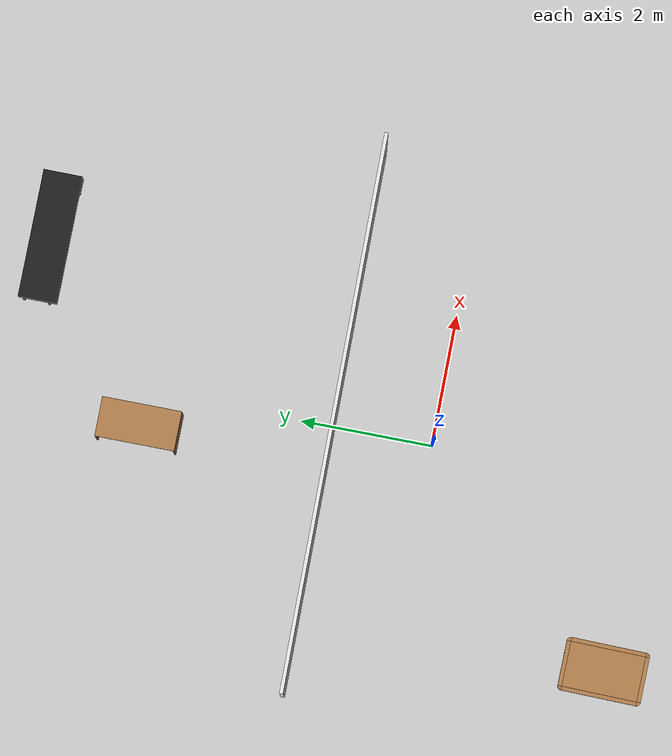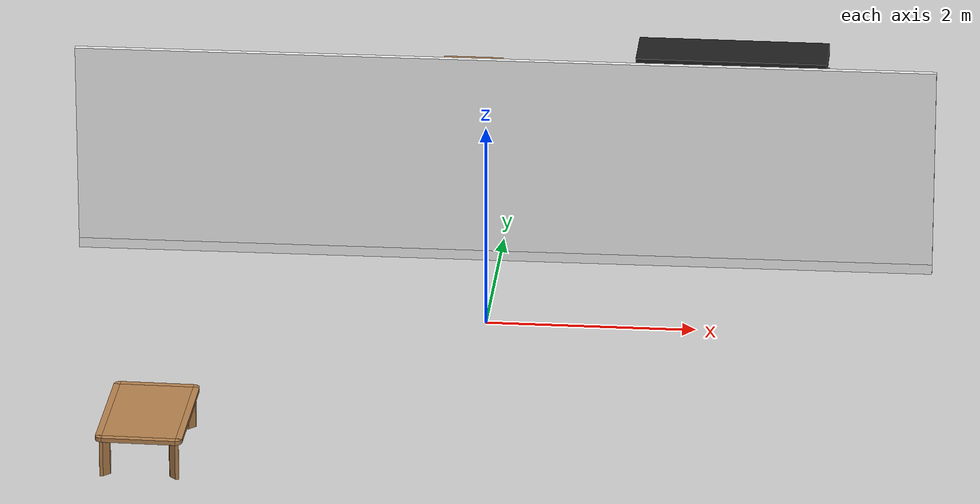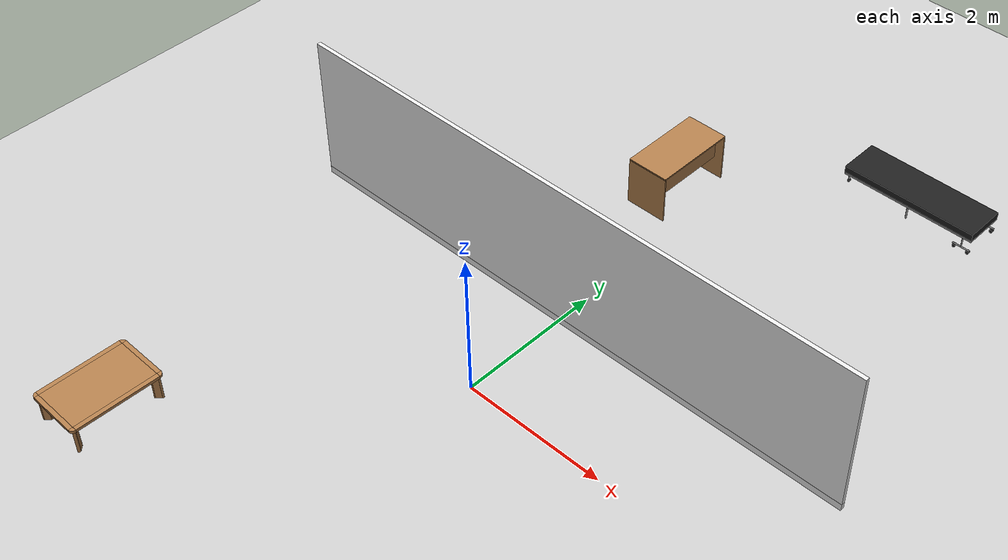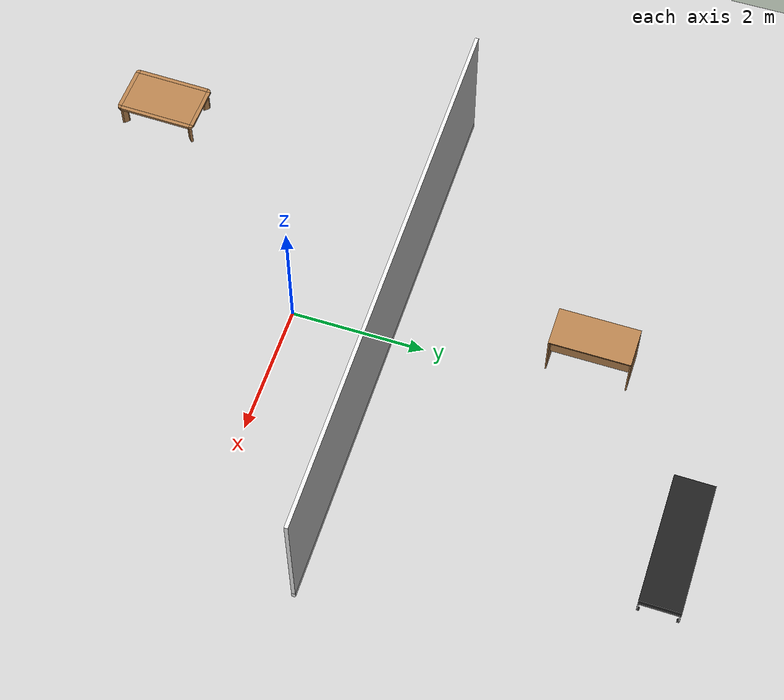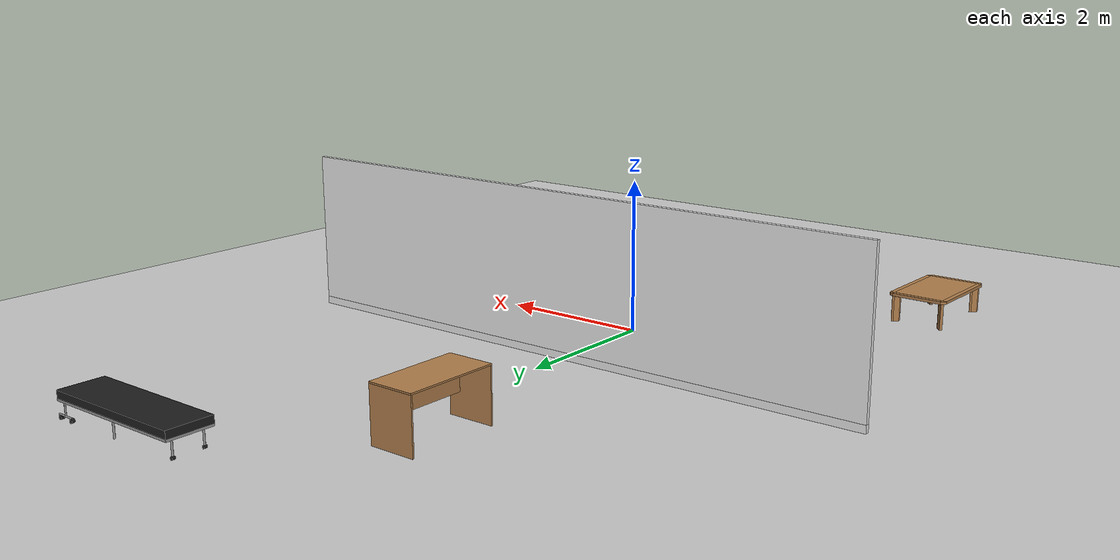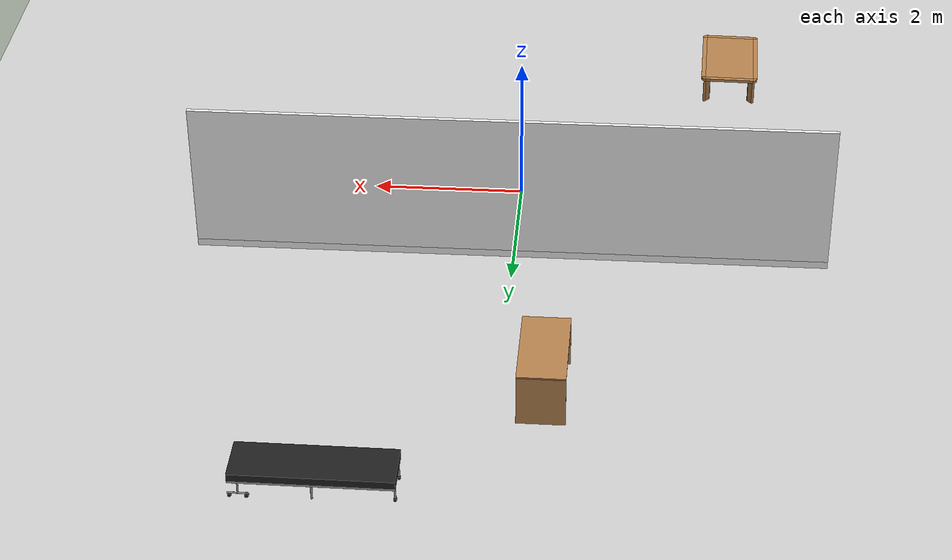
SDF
<sdf version="1.6">
 <world name="default">
  <model name="ground_plane">
   <static>1</static>
   <link name="link">
    <collision name="collision">
     <geometry><plane><normal>0 0 1</normal><size>100 100</size></plane></geometry>
     <surface>
      <contact><collide_bitmask>65535</collide_bitmask></contact>
      <friction><ode><mu>100</mu><mu2>50</mu2></ode></friction>
     </surface>
    </collision>
    <visual name="visual">
     <cast_shadows>0</cast_shadows>
     <geometry><plane><normal>0 0 1</normal><size>100 100</size></plane></geometry>
     <material>
      <script><uri>file://media/materials/scripts/gazebo.material</uri><name>Gazebo/Grey</name></script>
     </material>
    </visual>
   </link>
  </model>
  <model name="office_desk">
   <link name="link">
    <inertial>
     <mass>10</mass>
     <inertia><ixx>1</ixx><ixy>0</ixy><ixz>0</ixz><iyy>1</iyy><iyz>0</iyz><izz>1</izz></inertia>
    </inertial>
    <visual name="top_board">
     <pose>-0.3 0.6 0.69 0 -0 0</pose>
     <geometry><box><size>0.6 1.2 0.02</size></box></geometry>
     <material>
      <script>
       <uri>model://base_materials/wood/scripts/wood.material</uri>
       <name>base_materials/dark_wood</name>
      </script>
     </material>
    </visual>
    <collision name="collision_top_board">
     <pose>-0.3 0.6 0.69 0 -0 0</pose>
     <geometry><box><size>0.6 1.2 0.02</size></box></geometry>
    </collision>
    <visual name="left_board">
     <pose>-0.3 0.01 0.34 0 -0 0</pose>
     <geometry><box><size>0.6 0.02 0.68</size></box></geometry>
     <material>
      <script>
       <uri>model://base_materials/wood/scripts/wood.material</uri>
       <name>base_materials/dark_wood</name>
      </script>
     </material>
    </visual>
    <collision name="collision_left_board">
     <pose>-0.3 0.01 0.34 0 -0 0</pose>
     <geometry><box><size>0.6 0.02 0.68</size></box></geometry>
    </collision>
    <visual name="right_board">
     <pose>-0.3 1.19 0.34 0 -0 0</pose>
     <geometry><box><size>0.6 0.02 0.68</size></box></geometry>
     <material>
      <script>
       <uri>model://base_materials/wood/scripts/wood.material</uri>
       <name>base_materials/dark_wood</name>
      </script>
     </material>
    </visual>
    <collision name="collision_right_board">
     <pose>-0.3 1.19 0.34 0 -0 0</pose>
     <geometry><box><size>0.6 0.02 0.68</size></box></geometry>
    </collision>
    <visual name="center_board">
     <pose>-0.14 0.6 0.49 0 -0 0</pose>
     <geometry><box><size>0.02 1.16 0.4</size></box></geometry>
     <material>
      <script>
       <uri>model://base_materials/wood/scripts/wood.material</uri>
       <name>base_materials/dark_wood</name>
      </script>
     </material>
    </visual>
    <collision name="ollision_center_board">
     <pose>-0.14 0.6 0.49 0 -0 0</pose>
     <geometry><box><size>0.02 1.16 0.4</size></box></geometry>
    </collision>
    <velocity_decay><linear>0</linear><angular>0</angular></velocity_decay>
   </link>
   <static>1</static>
   <pose>-0.259014 3.74004 0 0 -0 0</pose>
  </model>
  <model name="bed">
   <link name="link">
    <inertial>
     <mass>10</mass>
     <inertia><ixx>1</ixx><ixy>0</ixy><ixz>0</ixz><iyy>1</iyy><iyz>0</iyz><izz>1</izz></inertia>
    </inertial>
    <visual name="cushion">
     <pose>-0.295 -0.975 0.2875 0 -0 0</pose>
     <geometry><box><size>0.59 1.95 0.095</size></box></geometry>
     <material>
      <script>
       <uri>model://base_materials/cloth/scripts</uri>
       <uri>model://base_materials/cloth/textures</uri>
       <name>cloth/black</name>
      </script>
     </material>
    </visual>
    <collision name="collision_cushion">
     <pose>-0.295 -0.975 0.2875 0 -0 0</pose>
     <geometry><box><size>0.59 1.95 0.095</size></box></geometry>
    </collision>
    <visual name="top_frame">
     <pose>-0.295 -0.975 0.225 0 -0 0</pose>
     <geometry><box><size>0.59 1.95 0.03</size></box></geometry>
     <material>
      <script><uri>model://base_materials/color/scripts</uri><name>hsr_color/grey</name></script>
     </material>
    </visual>
    <collision name="collision_top_frame">
     <pose>-0.295 -0.975 0.225 0 -0 0</pose>
     <geometry><box><size>0.59 1.95 0.03</size></box></geometry>
    </collision>
    <visual name="right_front_pole">
     <pose>-0.075 -0.0125 0.125 0 -0 0</pose>
     <geometry><cylinder><radius>0.0125</radius><length>0.17</length></cylinder></geometry>
     <material>
      <script><uri>model://base_materials/color/scripts</uri><name>hsr_color/grey</name></script>
     </material>
    </visual>
    <collision name="collision_right_front_pole">
     <pose>-0.075 -0.0125 0.125 0 -0 0</pose>
     <geometry><cylinder><radius>0.0125</radius><length>0.17</length></cylinder></geometry>
    </collision>
    <visual name="right_front_caster">
     <pose>-0.075 -0.0125 0.02 0 1.57 0</pose>
     <geometry><cylinder><radius>0.02</radius><length>0.04</length></cylinder></geometry>
     <material><script><name>Gazebo/Black</name><uri>__default__</uri></script></material>
    </visual>
    <collision name="collision_right_front_caster">
     <pose>-0.075 -0.0125 0.02 0 1.57 0</pose>
     <geometry><cylinder><radius>0.02</radius><length>0.04</length></cylinder></geometry>
    </collision>
    <visual name="right_back_pole">
     <pose>-0.46 -0.0125 0.125 0 -0 0</pose>
     <geometry><cylinder><radius>0.0125</radius><length>0.17</length></cylinder></geometry>
     <material>
      <script><uri>model://base_materials/color/scripts</uri><name>hsr_color/grey</name></script>
     </material>
    </visual>
    <collision name="collision_right_back_pole">
     <pose>-0.46 -0.0125 0.125 0 -0 0</pose>
     <geometry><cylinder><radius>0.0125</radius><length>0.17</length></cylinder></geometry>
    </collision>
    <visual name="right_back_caster">
     <pose>-0.46 -0.0125 0.02 0 1.57 0</pose>
     <geometry><cylinder><radius>0.02</radius><length>0.04</length></cylinder></geometry>
     <material><script><name>Gazebo/Black</name><uri>__default__</uri></script></material>
    </visual>
    <collision name="collision_back_front_caster">
     <pose>-0.46 -0.0125 0.02 0 1.57 0</pose>
     <geometry><cylinder><radius>0.02</radius><length>0.04</length></cylinder></geometry>
    </collision>
    <visual name="center_front_pole">
     <pose>-0.0425 -0.975 0.105 0 -0 0</pose>
     <geometry><cylinder><radius>0.0125</radius><length>0.21</length></cylinder></geometry>
     <material>
      <script><uri>model://base_materials/color/scripts</uri><name>hsr_color/grey</name></script>
     </material>
    </visual>
    <collision name="collision_center_front_pole">
     <pose>-0.0425 -0.975 0.105 0 -0 0</pose>
     <geometry><cylinder><radius>0.0125</radius><length>0.17</length></cylinder></geometry>
    </collision>
    <visual name="center_back_pole">
     <pose>-0.5475 -0.975 0.105 0 -0 0</pose>
     <geometry><cylinder><radius>0.0125</radius><length>0.21</length></cylinder></geometry>
     <material>
      <script><uri>model://base_materials/color/scripts</uri><name>hsr_color/grey</name></script>
     </material>
    </visual>
    <collision name="collision_center_back_pole">
     <pose>-0.5475 -0.975 0.105 0 -0 0</pose>
     <geometry><cylinder><radius>0.0125</radius><length>0.17</length></cylinder></geometry>
    </collision>
    <visual name="left_front_horizon_pole">
     <pose>-0.01 -1.825 0.06 1.57 -0 0</pose>
     <geometry><cylinder><radius>0.01</radius><length>0.25</length></cylinder></geometry>
     <material>
      <script><uri>model://base_materials/color/scripts</uri><name>hsr_color/grey</name></script>
     </material>
    </visual>
    <collision name="collision_left_front_horizon_pole">
     <pose>-0.01 -1.825 0.06 1.57 -0 0</pose>
     <geometry><cylinder><radius>0.01</radius><length>0.25</length></cylinder></geometry>
    </collision>
    <visual name="left_front_vertical_pole">
     <pose>-0.01 -1.825 0.14 0 -0 0</pose>
     <geometry><cylinder><radius>0.01</radius><length>0.14</length></cylinder></geometry>
     <material>
      <script><uri>model://base_materials/color/scripts</uri><name>hsr_color/grey</name></script>
     </material>
    </visual>
    <collision name="collision_left_front_vertical_pole">
     <pose>-0.01 -1.825 0.14 0 -0 0</pose>
     <geometry><cylinder><radius>0.01</radius><length>0.14</length></cylinder></geometry>
    </collision>
    <visual name="left_front_caster_r">
     <pose>-0.02 -1.725 0.025 0 1.57 0</pose>
     <geometry><cylinder><radius>0.025</radius><length>0.04</length></cylinder></geometry>
     <material><script><name>Gazebo/Black</name><uri>__default__</uri></script></material>
    </visual>
    <collision name="collision_left_front_caster_r">
     <pose>-0.02 -1.725 0.025 0 1.57 0</pose>
     <geometry><cylinder><radius>0.025</radius><length>0.04</length></cylinder></geometry>
    </collision>
    <visual name="left_front_caster_l">
     <pose>-0.02 -1.925 0.025 0 1.57 0</pose>
     <geometry><cylinder><radius>0.025</radius><length>0.04</length></cylinder></geometry>
     <material><script><name>Gazebo/Black</name><uri>__default__</uri></script></material>
    </visual>
    <collision name="collision_left_front_caster_l">
     <pose>-0.02 -1.925 0.025 0 1.57 0</pose>
     <geometry><cylinder><radius>0.025</radius><length>0.04</length></cylinder></geometry>
    </collision>
    <visual name="left_back_horizon_pole">
     <pose>-0.58 -1.825 0.06 1.57 -0 0</pose>
     <geometry><cylinder><radius>0.01</radius><length>0.25</length></cylinder></geometry>
     <material>
      <script><uri>model://base_materials/color/scripts</uri><name>hsr_color/grey</name></script>
     </material>
    </visual>
    <collision name="collision_left_back_horizon_pole">
     <pose>-0.58 -1.825 0.06 1.57 -0 0</pose>
     <geometry><cylinder><radius>0.01</radius><length>0.25</length></cylinder></geometry>
    </collision>
    <visual name="left_back_vertical_pole">
     <pose>-0.58 -1.825 0.14 0 -0 0</pose>
     <geometry><cylinder><radius>0.01</radius><length>0.14</length></cylinder></geometry>
     <material>
      <script><uri>model://base_materials/color/scripts</uri><name>hsr_color/grey</name></script>
     </material>
    </visual>
    <collision name="collision_left_back_vertical_pole">
     <pose>-0.58 -1.825 0.14 0 -0 0</pose>
     <geometry><cylinder><radius>0.01</radius><length>0.14</length></cylinder></geometry>
    </collision>
    <visual name="left_back_caster_r">
     <pose>-0.57 -1.725 0.025 0 1.57 0</pose>
     <geometry><cylinder><radius>0.025</radius><length>0.04</length></cylinder></geometry>
     <material><script><name>Gazebo/Black</name><uri>__default__</uri></script></material>
    </visual>
    <collision name="collision_left_back_caster_r">
     <pose>-0.57 -1.725 0.025 0 1.57 0</pose>
     <geometry><cylinder><radius>0.025</radius><length>0.04</length></cylinder></geometry>
    </collision>
    <visual name="left_back_caster_l">
     <pose>-0.57 -1.925 0.025 0 1.57 0</pose>
     <geometry><cylinder><radius>0.025</radius><length>0.04</length></cylinder></geometry>
     <material><script><name>Gazebo/Black</name><uri>__default__</uri></script></material>
    </visual>
    <collision name="collision_left_back_caster_l">
     <pose>-0.57 -1.925 0.025 0 1.57 0</pose>
     <geometry><cylinder><radius>0.025</radius><length>0.04</length></cylinder></geometry>
    </collision>
    <velocity_decay><linear>0</linear><angular>0</angular></velocity_decay>
   </link>
   <static>1</static>
   <pose>1.00948 6.50135 0 0 -0 1.56799</pose>
  </model>
  <model name="kitchen_lowtable">
   <link name="link">
    <inertial>
     <mass>10</mass>
     <inertia><ixx>1</ixx><ixy>0</ixy><ixz>0</ixz><iyy>1</iyy><iyz>0</iyz><izz>1</izz></inertia>
    </inertial>
    <visual name="center_board">
     <pose>0 0 0.38 0 -0 0</pose>
     <geometry><box><size>0.68 1.13 0.04</size></box></geometry>
     <material>
      <script><uri>model://base_materials/wood/scripts/wood.material</uri><name>base_materials/wood</name></script>
     </material>
    </visual>
    <collision name="collision_center_board">
     <pose>0 0 0.38 0 -0 0</pose>
     <geometry><box><size>0.68 1.13 0.04</size></box></geometry>
    </collision>
    <visual name="front_board">
     <pose>0.37 0 0.38 0 -0 0</pose>
     <geometry><box><size>0.06 1.13 0.04</size></box></geometry>
     <material>
      <script><uri>model://base_materials/wood/scripts/wood.material</uri><name>base_materials/wood</name></script>
     </material>
    </visual>
    <collision name="collision_front_board">
     <pose>0.37 0 0.38 0 -0 0</pose>
     <geometry><box><size>0.06 1.13 0.04</size></box></geometry>
    </collision>
    <visual name="back_board">
     <pose>-0.37 0 0.38 0 -0 0</pose>
     <geometry><box><size>0.06 1.13 0.04</size></box></geometry>
     <material>
      <script><uri>model://base_materials/wood/scripts/wood.material</uri><name>base_materials/wood</name></script>
     </material>
    </visual>
    <collision name="collision_back_board">
     <pose>-0.37 0 0.38 0 -0 0</pose>
     <geometry><box><size>0.06 1.13 0.04</size></box></geometry>
    </collision>
    <visual name="right_board">
     <pose>0 0.595 0.38 0 -0 0</pose>
     <geometry><box><size>0.68 0.06 0.04</size></box></geometry>
     <material>
      <script><uri>model://base_materials/wood/scripts/wood.material</uri><name>base_materials/wood</name></script>
     </material>
    </visual>
    <collision name="collision_right_board">
     <pose>0 0.595 0.38 0 -0 0</pose>
     <geometry><box><size>0.68 0.06 0.04</size></box></geometry>
    </collision>
    <visual name="left_board">
     <pose>0 -0.595 0.38 0 -0 0</pose>
     <geometry><box><size>0.68 0.06 0.04</size></box></geometry>
     <material>
      <script><uri>model://base_materials/wood/scripts/wood.material</uri><name>base_materials/wood</name></script>
     </material>
    </visual>
    <collision name="collision_left_board">
     <pose>0 -0.595 0.38 0 -0 0</pose>
     <geometry><box><size>0.68 0.06 0.04</size></box></geometry>
    </collision>
    <visual name="front_right_corner_board">
     <pose>0.34 0.565 0.38 0 -0 0</pose>
     <geometry><cylinder><radius>0.06</radius><length>0.039</length></cylinder></geometry>
     <material>
      <script><uri>model://base_materials/wood/scripts/wood.material</uri><name>base_materials/wood</name></script>
     </material>
    </visual>
    <collision name="collision_front_right_corner_board">
     <pose>0.34 0.565 0.38 0 -0 0</pose>
     <geometry><cylinder><radius>0.06</radius><length>0.039</length></cylinder></geometry>
    </collision>
    <visual name="front_left_corner_board">
     <pose>0.34 -0.565 0.38 0 -0 0</pose>
     <geometry><cylinder><radius>0.06</radius><length>0.039</length></cylinder></geometry>
     <material>
      <script><uri>model://base_materials/wood/scripts/wood.material</uri><name>base_materials/wood</name></script>
     </material>
    </visual>
    <collision name="collision_front_left_corner_board">
     <pose>0.34 -0.565 0.38 0 -0 0</pose>
     <geometry><cylinder><radius>0.06</radius><length>0.039</length></cylinder></geometry>
    </collision>
    <visual name="front_back_right_corner_board">
     <pose>-0.34 0.565 0.38 0 -0 0</pose>
     <geometry><cylinder><radius>0.06</radius><length>0.039</length></cylinder></geometry>
     <material>
      <script><uri>model://base_materials/wood/scripts/wood.material</uri><name>base_materials/wood</name></script>
     </material>
    </visual>
    <collision name="collision_back_right_corner_board">
     <pose>-0.34 0.565 0.38 0 -0 0</pose>
     <geometry><cylinder><radius>0.06</radius><length>0.039</length></cylinder></geometry>
    </collision>
    <visual name="front_back_left_corner_board">
     <pose>-0.34 -0.565 0.38 0 -0 0</pose>
     <geometry><cylinder><radius>0.06</radius><length>0.039</length></cylinder></geometry>
     <material>
      <script><uri>model://base_materials/wood/scripts/wood.material</uri><name>base_materials/wood</name></script>
     </material>
    </visual>
    <collision name="collision_back_left_corner_board">
     <pose>-0.34 -0.565 0.38 0 -0 0</pose>
     <geometry><cylinder><radius>0.06</radius><length>0.039</length></cylinder></geometry>
    </collision>
    <visual name="front_left_corner_frame1">
     <pose>0.345858 -0.57086 0.18 0 -0 0</pose>
     <geometry><cylinder><radius>0.02</radius><length>0.36</length></cylinder></geometry>
     <material>
      <script><uri>model://base_materials/wood/scripts/wood.material</uri><name>base_materials/wood</name></script>
     </material>
    </visual>
    <collision name="collision_front_left_corner_frame1">
     <pose>0.345858 -0.57086 0.18 0 -0 0</pose>
     <geometry><cylinder><radius>0.02</radius><length>0.36</length></cylinder></geometry>
    </collision>
    <visual name="front_left_corner_frame2">
     <pose>0.317574 -0.54257 0.18 0 -0 0.7854</pose>
     <geometry><box><size>0.04 0.08 0.36</size></box></geometry>
     <material>
      <script><uri>model://base_materials/wood/scripts/wood.material</uri><name>base_materials/wood</name></script>
     </material>
    </visual>
    <collision name="collision_front_left_corner_frame2">
     <pose>0.317574 -0.54257 0.18 0 -0 0.7854</pose>
     <geometry><box><size>0.04 0.08 0.36</size></box></geometry>
    </collision>
    <visual name="front_left_corner_frame3">
     <pose>0.289289 -0.51429 0.18 0 -0 0</pose>
     <geometry><cylinder><radius>0.02</radius><length>0.36</length></cylinder></geometry>
     <material>
      <script><uri>model://base_materials/wood/scripts/wood.material</uri><name>base_materials/wood</name></script>
     </material>
    </visual>
    <collision name="collision_front_left_corner_frame3">
     <pose>0.289289 -0.51429 0.18 0 -0 0</pose>
     <geometry><cylinder><radius>0.02</radius><length>0.36</length></cylinder></geometry>
    </collision>
    <visual name="front_right_corner_frame1">
     <pose>0.345858 0.57086 0.18 0 -0 0</pose>
     <geometry><cylinder><radius>0.02</radius><length>0.36</length></cylinder></geometry>
     <material>
      <script><uri>model://base_materials/wood/scripts/wood.material</uri><name>base_materials/wood</name></script>
     </material>
    </visual>
    <collision name="collision_front_right_corner_frame1">
     <pose>0.345858 0.57086 0.18 0 -0 0</pose>
     <geometry><cylinder><radius>0.02</radius><length>0.36</length></cylinder></geometry>
    </collision>
    <visual name="front_right_corner_frame2">
     <pose>0.317574 0.54257 0.18 0 0 -0.7854</pose>
     <geometry><box><size>0.04 0.08 0.36</size></box></geometry>
     <material>
      <script><uri>model://base_materials/wood/scripts/wood.material</uri><name>base_materials/wood</name></script>
     </material>
    </visual>
    <collision name="collision_front_right_corner_frame2">
     <pose>0.317574 0.54257 0.18 0 0 -0.7854</pose>
     <geometry><box><size>0.04 0.08 0.36</size></box></geometry>
    </collision>
    <visual name="front_right_corner_frame3">
     <pose>0.289289 0.51429 0.18 0 -0 0</pose>
     <geometry><cylinder><radius>0.02</radius><length>0.36</length></cylinder></geometry>
     <material>
      <script><uri>model://base_materials/wood/scripts/wood.material</uri><name>base_materials/wood</name></script>
     </material>
    </visual>
    <collision name="collision_front_right_corner_frame3">
     <pose>0.289289 0.51429 0.18 0 -0 0</pose>
     <geometry><cylinder><radius>0.02</radius><length>0.36</length></cylinder></geometry>
    </collision>
    <visual name="back_left_corner_frame1">
     <pose>-0.345858 -0.57086 0.18 0 -0 0</pose>
     <geometry><cylinder><radius>0.02</radius><length>0.36</length></cylinder></geometry>
     <material>
      <script><uri>model://base_materials/wood/scripts/wood.material</uri><name>base_materials/wood</name></script>
     </material>
    </visual>
    <collision name="collision_back_left_corner_frame1">
     <pose>-0.345858 -0.57086 0.18 0 -0 0</pose>
     <geometry><cylinder><radius>0.02</radius><length>0.36</length></cylinder></geometry>
    </collision>
    <visual name="back_left_corner_frame2">
     <pose>-0.317574 -0.54257 0.18 0 0 -0.7854</pose>
     <geometry><box><size>0.04 0.08 0.36</size></box></geometry>
     <material>
      <script><uri>model://base_materials/wood/scripts/wood.material</uri><name>base_materials/wood</name></script>
     </material>
    </visual>
    <collision name="collision_back_left_corner_frame2">
     <pose>-0.317574 -0.54257 0.18 0 0 -0.7854</pose>
     <geometry><box><size>0.04 0.08 0.36</size></box></geometry>
    </collision>
    <visual name="back_left_corner_frame3">
     <pose>-0.289289 -0.51429 0.18 0 -0 0</pose>
     <geometry><cylinder><radius>0.02</radius><length>0.36</length></cylinder></geometry>
     <material>
      <script><uri>model://base_materials/wood/scripts/wood.material</uri><name>base_materials/wood</name></script>
     </material>
    </visual>
    <collision name="collision_back_left_corner_frame3">
     <pose>-0.289289 -0.51429 0.18 0 -0 0</pose>
     <geometry><cylinder><radius>0.02</radius><length>0.36</length></cylinder></geometry>
    </collision>
    <visual name="back_right_corner_frame1">
     <pose>-0.345858 0.57086 0.18 0 -0 0</pose>
     <geometry><cylinder><radius>0.02</radius><length>0.36</length></cylinder></geometry>
     <material>
      <script><uri>model://base_materials/wood/scripts/wood.material</uri><name>base_materials/wood</name></script>
     </material>
    </visual>
    <collision name="collision_back_right_corner_frame1">
     <pose>-0.345858 0.57086 0.18 0 -0 0</pose>
     <geometry><cylinder><radius>0.02</radius><length>0.36</length></cylinder></geometry>
    </collision>
    <visual name="back_right_corner_frame2">
     <pose>-0.317574 0.54257 0.18 0 -0 0.7854</pose>
     <geometry><box><size>0.04 0.08 0.36</size></box></geometry>
     <material>
      <script><uri>model://base_materials/wood/scripts/wood.material</uri><name>base_materials/wood</name></script>
     </material>
    </visual>
    <collision name="collision_back_right_corner_frame2">
     <pose>-0.317574 0.54257 0.18 0 -0 0.7854</pose>
     <geometry><box><size>0.04 0.08 0.36</size></box></geometry>
    </collision>
    <visual name="back_right_corner_frame3">
     <pose>-0.289289 0.51429 0.18 0 -0 0</pose>
     <geometry><cylinder><radius>0.02</radius><length>0.36</length></cylinder></geometry>
     <material>
      <script><uri>model://base_materials/wood/scripts/wood.material</uri><name>base_materials/wood</name></script>
     </material>
    </visual>
    <collision name="collision_back_right_corner_frame3">
     <pose>-0.289289 0.51429 0.18 0 -0 0</pose>
     <geometry><cylinder><radius>0.02</radius><length>0.36</length></cylinder></geometry>
    </collision>
    <velocity_decay><linear>0</linear><angular>0</angular></velocity_decay>
   </link>
   <static>1</static>
   <pose>-2.83982 -3.11924 -0.00094 0 -0 3.12309</pose>
  </model>
  <model name="full_wall_55_8295_2090">
   <link name="link">
    <inertial>
     <mass>50</mass>
     <inertia><ixx>1</ixx><ixy>0</ixy><ixz>0</ixz><iyy>1</iyy><iyz>0</iyz><izz>1</izz></inertia>
    </inertial>
    <visual name="bottom_frame">
     <pose>0 0 0.05 0 -0 0</pose>
     <geometry><box><size>0.055 8.295 0.1</size></box></geometry>
     <material>
      <script><uri>model://base_materials/color/scripts</uri><name>hsr_color/white</name></script>
     </material>
    </visual>
    <collision name="collision_bottom_frame">
     <pose>0 0 0.05 0 -0 0</pose>
     <geometry><box><size>0.055 8.295 0.1</size></box></geometry>
    </collision>
    <visual name="wall">
     <pose>0 0 1.095 0 -0 0</pose>
     <geometry><box><size>0.055 8.295 1.99</size></box></geometry>
     <material>
      <script>
       <uri>model://base_materials/wall/scripts</uri>
       <uri>model://base_materials/wall/textures</uri>
       <name>wall/white_noise</name>
      </script>
     </material>
    </visual>
    <collision name="collision_wall">
     <pose>0 0 1.095 0 -0 0</pose>
     <geometry><box><size>0.055 8.295 1.99</size></box></geometry>
    </collision>
    <velocity_decay><linear>0</linear><angular>0</angular></velocity_decay>
   </link>
   <static>1</static>
   <pose>0.042381 1.50254 0 0 0 -1.56486</pose>
  </model>
 </world>
</sdf>
